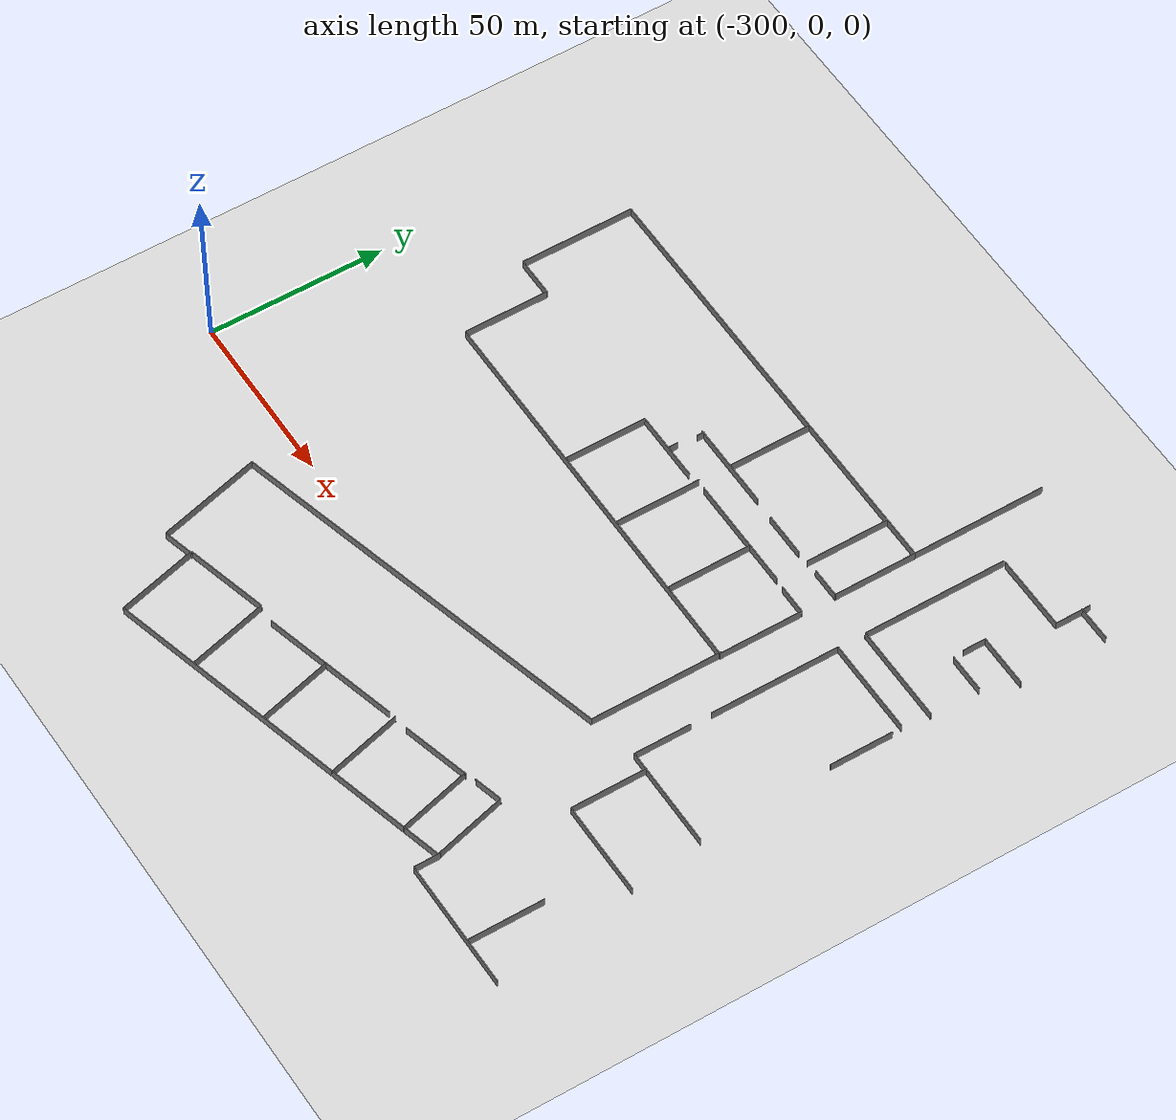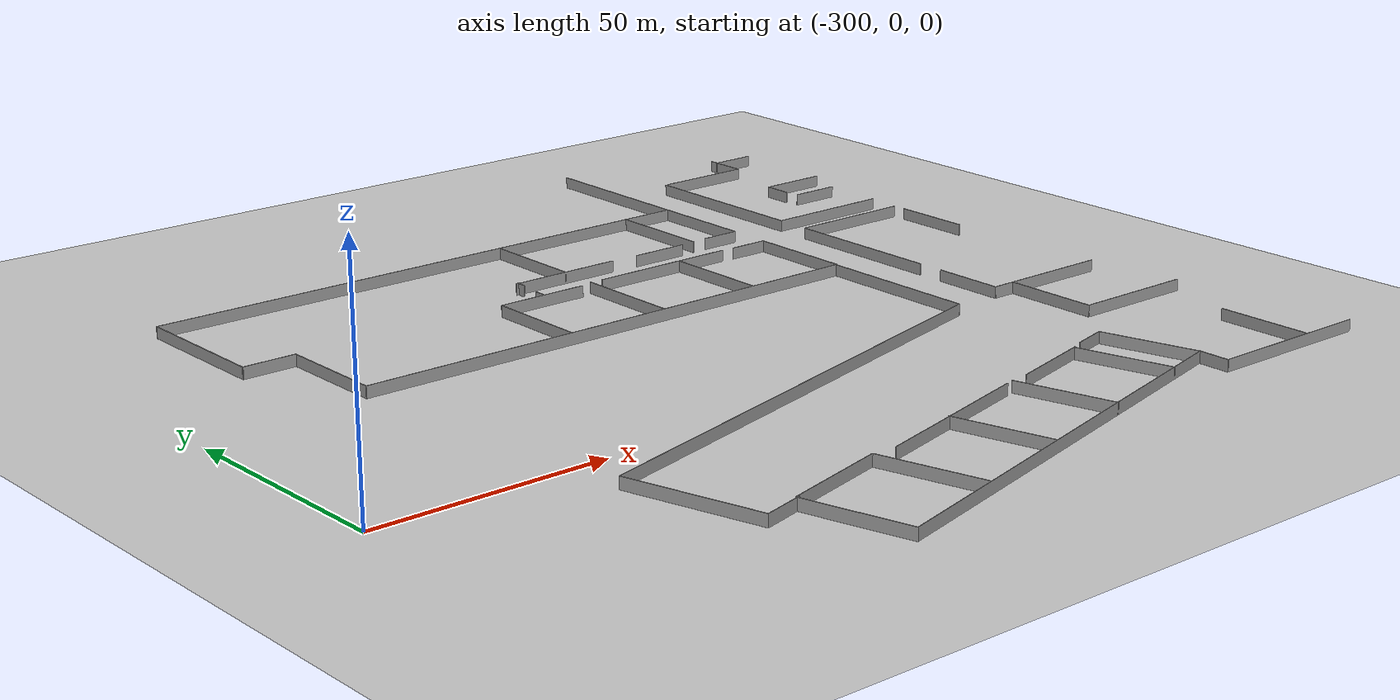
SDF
<sdf version="1.7">
 <world name="default">
  <model name="ground_plane">
   <static>1</static>
   <link name="link">
    <collision name="collision">
     <geometry><plane><normal>0 0 1</normal><size>100 100</size></plane></geometry>
     <surface>
      <contact><collide_bitmask>65535</collide_bitmask></contact>
      <friction><ode><mu>100</mu><mu2>50</mu2></ode></friction>
     </surface>
    </collision>
    <visual name="visual">
     <cast_shadows>0</cast_shadows>
     <geometry><plane><normal>0 0 1</normal><size>100 100</size></plane></geometry>
     <material>
      <script><uri>file://media/materials/scripts/gazebo.material</uri><name>Gazebo/Grey</name></script>
     </material>
    </visual>
   </link>
  </model>
  <model name="DohertyFinal">
   <pose>-129.277 42.9973 0 0 -0 0</pose>
   <link name="Wall_0">
    <collision name="Wall_0_Collision">
     <geometry><box><size>11.75 0.15 2.5</size></box></geometry>
     <pose>0 0 1.25 0 -0 0</pose>
    </collision>
    <visual name="Wall_0_Visual">
     <pose>0 0 1.25 0 -0 0</pose>
     <geometry><box><size>11.75 0.15 2.5</size></box></geometry>
     <material>
      <script><uri>file://media/materials/scripts/gazebo.material</uri><name>Gazebo/Grey</name></script>
      <ambient>1 1 1 1</ambient>
     </material>
     <meta><layer>0</layer></meta>
    </visual>
    <pose>-141.015 34.4358 0 0 -0 3.14159</pose>
   </link>
   <link name="Wall_1">
    <collision name="Wall_1_Collision">
     <geometry><box><size>32.5 0.15 2.5</size></box></geometry>
     <pose>0 0 1.25 0 -0 0</pose>
    </collision>
    <visual name="Wall_1_Visual">
     <pose>0 0 1.25 0 -0 0</pose>
     <geometry><box><size>32.5 0.15 2.5</size></box></geometry>
     <material>
      <script><uri>file://media/materials/scripts/gazebo.material</uri><name>Gazebo/Grey</name></script>
      <ambient>1 1 1 1</ambient>
     </material>
     <meta><layer>0</layer></meta>
    </visual>
    <pose>-146.815 50.6108 0 0 -0 1.5708</pose>
   </link>
   <link name="Wall_10">
    <collision name="Wall_10_Collision">
     <geometry><box><size>25.25 0.15 2.5</size></box></geometry>
     <pose>0 0 1.25 0 -0 0</pose>
    </collision>
    <visual name="Wall_10_Visual">
     <pose>0 0 1.25 0 -0 0</pose>
     <geometry><box><size>25.25 0.15 2.5</size></box></geometry>
     <material>
      <script><uri>file://media/materials/scripts/gazebo.material</uri><name>Gazebo/Grey</name></script>
      <ambient>1 1 1 1</ambient>
     </material>
     <meta><layer>0</layer></meta>
    </visual>
    <pose>-64.5141 43.3806 0 0 -0 3.14159</pose>
   </link>
   <link name="Wall_100">
    <collision name="Wall_100_Collision">
     <geometry><box><size>28.25 0.15 2.5</size></box></geometry>
     <pose>0 0 1.25 0 -0 0</pose>
    </collision>
    <visual name="Wall_100_Visual">
     <pose>0 0 1.25 0 -0 0</pose>
     <geometry><box><size>28.25 0.15 2.5</size></box></geometry>
     <material>
      <script><uri>file://media/materials/scripts/gazebo.material</uri><name>Gazebo/Grey</name></script>
      <ambient>1 1 1 1</ambient>
     </material>
     <meta><layer>0</layer></meta>
    </visual>
    <pose>9.77862 43.2354 0 0 -0 0</pose>
   </link>
   <link name="Wall_106">
    <collision name="Wall_106_Collision">
     <geometry><box><size>21.75 0.15 2.5</size></box></geometry>
     <pose>0 0 1.25 0 -0 0</pose>
    </collision>
    <visual name="Wall_106_Visual">
     <pose>0 0 1.25 0 -0 0</pose>
     <geometry><box><size>21.75 0.15 2.5</size></box></geometry>
     <material>
      <script><uri>file://media/materials/scripts/gazebo.material</uri><name>Gazebo/Grey</name></script>
      <ambient>1 1 1 1</ambient>
     </material>
     <meta><layer>0</layer></meta>
    </visual>
    <pose>7.17052 83.8354 0 0 -0 0</pose>
   </link>
   <link name="Wall_107">
    <collision name="Wall_107_Collision">
     <geometry><box><size>10 0.15 2.5</size></box></geometry>
     <pose>0 0 1.25 0 -0 0</pose>
    </collision>
    <visual name="Wall_107_Visual">
     <pose>0 0 1.25 0 -0 0</pose>
     <geometry><box><size>10 0.15 2.5</size></box></geometry>
     <material>
      <script><uri>file://media/materials/scripts/gazebo.material</uri><name>Gazebo/Grey</name></script>
      <ambient>1 1 1 1</ambient>
     </material>
     <meta><layer>0</layer></meta>
    </visual>
    <pose>17.9705 88.7604 0 0 -0 1.5708</pose>
   </link>
   <link name="Wall_109">
    <collision name="Wall_109_Collision">
     <geometry><box><size>10 0.15 2.5</size></box></geometry>
     <pose>0 0 1.25 0 -0 0</pose>
    </collision>
    <visual name="Wall_109_Visual">
     <pose>0 0 1.25 0 -0 0</pose>
     <geometry><box><size>10 0.15 2.5</size></box></geometry>
     <material>
      <script><uri>file://media/materials/scripts/gazebo.material</uri><name>Gazebo/Grey</name></script>
      <ambient>1 1 1 1</ambient>
     </material>
     <meta><layer>0</layer></meta>
    </visual>
    <pose>22.799 91.5382 0 0 -0 0</pose>
   </link>
   <link name="Wall_111">
    <collision name="Wall_111_Collision">
     <geometry><box><size>15.25 0.15 2.5</size></box></geometry>
     <pose>0 0 1.25 0 -0 0</pose>
    </collision>
    <visual name="Wall_111_Visual">
     <pose>0 0 1.25 0 -0 0</pose>
     <geometry><box><size>15.25 0.15 2.5</size></box></geometry>
     <material>
      <script><uri>file://media/materials/scripts/gazebo.material</uri><name>Gazebo/Grey</name></script>
      <ambient>1 1 1 1</ambient>
     </material>
     <meta><layer>0</layer></meta>
    </visual>
    <pose>20.174 66.6882 0 0 -0 3.14159</pose>
   </link>
   <link name="Wall_112">
    <collision name="Wall_112_Collision">
     <geometry><box><size>6.5 0.15 2.5</size></box></geometry>
     <pose>0 0 1.25 0 -0 0</pose>
    </collision>
    <visual name="Wall_112_Visual">
     <pose>0 0 1.25 0 -0 0</pose>
     <geometry><box><size>6.5 0.15 2.5</size></box></geometry>
     <material>
      <script><uri>file://media/materials/scripts/gazebo.material</uri><name>Gazebo/Grey</name></script>
      <ambient>1 1 1 1</ambient>
     </material>
     <meta><layer>0</layer></meta>
    </visual>
    <pose>12.624 63.5132 0 0 -0 -1.5708</pose>
   </link>
   <link name="Wall_114">
    <collision name="Wall_114_Collision">
     <geometry><box><size>11 0.15 2.5</size></box></geometry>
     <pose>0 0 1.25 0 -0 0</pose>
    </collision>
    <visual name="Wall_114_Visual">
     <pose>0 0 1.25 0 -0 0</pose>
     <geometry><box><size>11 0.15 2.5</size></box></geometry>
     <material>
      <script><uri>file://media/materials/scripts/gazebo.material</uri><name>Gazebo/Grey</name></script>
      <ambient>1 1 1 1</ambient>
     </material>
     <meta><layer>0</layer></meta>
    </visual>
    <pose>18.4848 57.1969 0 0 -0 0</pose>
   </link>
   <link name="Wall_124">
    <collision name="Wall_124_Collision">
     <geometry><box><size>27.5 0.15 2.5</size></box></geometry>
     <pose>0 0 1.25 0 -0 0</pose>
    </collision>
    <visual name="Wall_124_Visual">
     <pose>0 0 1.25 0 -0 0</pose>
     <geometry><box><size>27.5 0.15 2.5</size></box></geometry>
     <material>
      <script><uri>file://media/materials/scripts/gazebo.material</uri><name>Gazebo/Grey</name></script>
      <ambient>1 1 1 1</ambient>
     </material>
     <meta><layer>0</layer></meta>
    </visual>
    <pose>9.33411 35.3725 0 0 -0 3.14159</pose>
   </link>
   <link name="Wall_125">
    <collision name="Wall_125_Collision">
     <geometry><box><size>36.5 0.15 2.5</size></box></geometry>
     <pose>0 0 1.25 0 -0 0</pose>
    </collision>
    <visual name="Wall_125_Visual">
     <pose>0 0 1.25 0 -0 0</pose>
     <geometry><box><size>36.5 0.15 2.5</size></box></geometry>
     <material>
      <script><uri>file://media/materials/scripts/gazebo.material</uri><name>Gazebo/Grey</name></script>
      <ambient>1 1 1 1</ambient>
     </material>
     <meta><layer>0</layer></meta>
    </visual>
    <pose>-4.34089 17.1975 0 0 -0 -1.5708</pose>
   </link>
   <link name="Wall_127">
    <collision name="Wall_127_Collision">
     <geometry><box><size>16 0.15 2.5</size></box></geometry>
     <pose>0 0 1.25 0 -0 0</pose>
    </collision>
    <visual name="Wall_127_Visual">
     <pose>0 0 1.25 0 -0 0</pose>
     <geometry><box><size>16 0.15 2.5</size></box></geometry>
     <material>
      <script><uri>file://media/materials/scripts/gazebo.material</uri><name>Gazebo/Grey</name></script>
      <ambient>1 1 1 1</ambient>
     </material>
     <meta><layer>0</layer></meta>
    </visual>
    <pose>-4.27137 -14.9175 0 0 -0 -1.5708</pose>
   </link>
   <link name="Wall_128">
    <collision name="Wall_128_Collision">
     <geometry><box><size>29.25 0.15 2.5</size></box></geometry>
     <pose>0 0 1.25 0 -0 0</pose>
    </collision>
    <visual name="Wall_128_Visual">
     <pose>0 0 1.25 0 -0 0</pose>
     <geometry><box><size>29.25 0.15 2.5</size></box></geometry>
     <material>
      <script><uri>file://media/materials/scripts/gazebo.material</uri><name>Gazebo/Grey</name></script>
      <ambient>1 1 1 1</ambient>
     </material>
     <meta><layer>0</layer></meta>
    </visual>
    <pose>10.2786 -22.8425 0 0 -0 0</pose>
   </link>
   <link name="Wall_13">
    <collision name="Wall_13_Collision">
     <geometry><box><size>23.25 0.15 2.5</size></box></geometry>
     <pose>0 0 1.25 0 -0 0</pose>
    </collision>
    <visual name="Wall_13_Visual">
     <pose>0 0 1.25 0 -0 0</pose>
     <geometry><box><size>23.25 0.15 2.5</size></box></geometry>
     <material>
      <script><uri>file://media/materials/scripts/gazebo.material</uri><name>Gazebo/Grey</name></script>
      <ambient>1 1 1 1</ambient>
     </material>
     <meta><layer>0</layer></meta>
    </visual>
    <pose>-64.4104 54.9306 0 0 -0 1.5708</pose>
   </link>
   <link name="Wall_130">
    <collision name="Wall_130_Collision">
     <geometry><box><size>17.75 0.15 2.5</size></box></geometry>
     <pose>0 0 1.25 0 -0 0</pose>
    </collision>
    <visual name="Wall_130_Visual">
     <pose>0 0 1.25 0 -0 0</pose>
     <geometry><box><size>17.75 0.15 2.5</size></box></geometry>
     <material>
      <script><uri>file://media/materials/scripts/gazebo.material</uri><name>Gazebo/Grey</name></script>
      <ambient>1 1 1 1</ambient>
     </material>
     <meta><layer>0</layer></meta>
    </visual>
    <pose>23.3301 23.6839 0 0 -0 -1.5708</pose>
   </link>
   <link name="Wall_146">
    <collision name="Wall_146_Collision">
     <geometry><box><size>21.25 0.15 2.5</size></box></geometry>
     <pose>0 0 1.25 0 -0 0</pose>
    </collision>
    <visual name="Wall_146_Visual">
     <pose>0 0 1.25 0 -0 0</pose>
     <geometry><box><size>21.25 0.15 2.5</size></box></geometry>
     <material>
      <script><uri>file://media/materials/scripts/gazebo.material</uri><name>Gazebo/Grey</name></script>
      <ambient>1 1 1 1</ambient>
     </material>
     <meta><layer>0</layer></meta>
    </visual>
    <pose>0.863775 -33.2778 0 0 -0 -1.5708</pose>
   </link>
   <link name="Wall_147">
    <collision name="Wall_147_Collision">
     <geometry><box><size>27.25 0.15 2.5</size></box></geometry>
     <pose>0 0 1.25 0 -0 0</pose>
    </collision>
    <visual name="Wall_147_Visual">
     <pose>0 0 1.25 0 -0 0</pose>
     <geometry><box><size>27.25 0.15 2.5</size></box></geometry>
     <material>
      <script><uri>file://media/materials/scripts/gazebo.material</uri><name>Gazebo/Grey</name></script>
      <ambient>1 1 1 1</ambient>
     </material>
     <meta><layer>0</layer></meta>
    </visual>
    <pose>14.4138 -43.8278 0 0 -0 0</pose>
   </link>
   <link name="Wall_17">
    <collision name="Wall_17_Collision">
     <geometry><box><size>24 0.15 2.5</size></box></geometry>
     <pose>0 0 1.25 0 -0 0</pose>
    </collision>
    <visual name="Wall_17_Visual">
     <pose>0 0 1.25 0 -0 0</pose>
     <geometry><box><size>24 0.15 2.5</size></box></geometry>
     <material>
      <script><uri>file://media/materials/scripts/gazebo.material</uri><name>Gazebo/Grey</name></script>
      <ambient>1 1 1 1</ambient>
     </material>
     <meta><layer>0</layer></meta>
    </visual>
    <pose>-135.258 22.2007 0 0 -0 -1.5708</pose>
   </link>
   <link name="Wall_174">
    <collision name="Wall_174_Collision">
     <geometry><box><size>21 0.15 2.5</size></box></geometry>
     <pose>0 0 1.25 0 -0 0</pose>
    </collision>
    <visual name="Wall_174_Visual">
     <pose>0 0 1.25 0 -0 0</pose>
     <geometry><box><size>21 0.15 2.5</size></box></geometry>
     <material>
      <script><uri>file://media/materials/scripts/gazebo.material</uri><name>Gazebo/Grey</name></script>
      <ambient>1 1 1 1</ambient>
     </material>
     <meta><layer>0</layer></meta>
    </visual>
    <pose>19.3349 -73.171 0 0 -0 1.5708</pose>
   </link>
   <link name="Wall_18">
    <collision name="Wall_18_Collision">
     <geometry><box><size>117.5 0.15 2.5</size></box></geometry>
     <pose>0 0 1.25 0 -0 0</pose>
    </collision>
    <visual name="Wall_18_Visual">
     <pose>0 0 1.25 0 -0 0</pose>
     <geometry><box><size>117.5 0.15 2.5</size></box></geometry>
     <material>
      <script><uri>file://media/materials/scripts/gazebo.material</uri><name>Gazebo/Grey</name></script>
      <ambient>1 1 1 1</ambient>
     </material>
     <meta><layer>0</layer></meta>
    </visual>
    <pose>-76.5833 10.2757 0 0 -0 0</pose>
   </link>
   <link name="Wall_19">
    <collision name="Wall_19_Collision">
     <geometry><box><size>23.75 0.15 2.5</size></box></geometry>
     <pose>0 0 1.25 0 -0 0</pose>
    </collision>
    <visual name="Wall_19_Visual">
     <pose>0 0 1.25 0 -0 0</pose>
     <geometry><box><size>23.75 0.15 2.5</size></box></geometry>
     <material>
      <script><uri>file://media/materials/scripts/gazebo.material</uri><name>Gazebo/Grey</name></script>
      <ambient>1 1 1 1</ambient>
     </material>
     <meta><layer>0</layer></meta>
    </visual>
    <pose>-17.9083 22.0757 0 0 -0 1.5708</pose>
   </link>
   <link name="Wall_2">
    <collision name="Wall_2_Collision">
     <geometry><box><size>129.25 0.15 2.5</size></box></geometry>
     <pose>0 0 1.25 0 -0 0</pose>
    </collision>
    <visual name="Wall_2_Visual">
     <pose>0 0 1.25 0 -0 0</pose>
     <geometry><box><size>129.25 0.15 2.5</size></box></geometry>
     <material>
      <script><uri>file://media/materials/scripts/gazebo.material</uri><name>Gazebo/Grey</name></script>
      <ambient>1 1 1 1</ambient>
     </material>
     <meta><layer>0</layer></meta>
    </visual>
    <pose>-82.2655 66.7858 0 0 -0 0</pose>
   </link>
   <link name="Wall_20">
    <collision name="Wall_20_Collision">
     <geometry><box><size>8.75 0.15 2.5</size></box></geometry>
     <pose>0 0 1.25 0 -0 0</pose>
    </collision>
    <visual name="Wall_20_Visual">
     <pose>0 0 1.25 0 -0 0</pose>
     <geometry><box><size>8.75 0.15 2.5</size></box></geometry>
     <material>
      <script><uri>file://media/materials/scripts/gazebo.material</uri><name>Gazebo/Grey</name></script>
      <ambient>1 1 1 1</ambient>
     </material>
     <meta><layer>0</layer></meta>
    </visual>
    <pose>-22.2083 33.8757 0 0 -0 3.14159</pose>
   </link>
   <link name="Wall_22">
    <collision name="Wall_22_Collision">
     <geometry><box><size>32.75 0.15 2.5</size></box></geometry>
     <pose>0 0 1.25 0 -0 0</pose>
    </collision>
    <visual name="Wall_22_Visual">
     <pose>0 0 1.25 0 -0 0</pose>
     <geometry><box><size>32.75 0.15 2.5</size></box></geometry>
     <material>
      <script><uri>file://media/materials/scripts/gazebo.material</uri><name>Gazebo/Grey</name></script>
      <ambient>1 1 1 1</ambient>
     </material>
     <meta><layer>0</layer></meta>
    </visual>
    <pose>-45.6056 34.1257 0 0 -0 3.14159</pose>
   </link>
   <link name="Wall_24">
    <collision name="Wall_24_Collision">
     <geometry><box><size>20.5 0.15 2.5</size></box></geometry>
     <pose>0 0 1.25 0 -0 0</pose>
    </collision>
    <visual name="Wall_24_Visual">
     <pose>0 0 1.25 0 -0 0</pose>
     <geometry><box><size>20.5 0.15 2.5</size></box></geometry>
     <material>
      <script><uri>file://media/materials/scripts/gazebo.material</uri><name>Gazebo/Grey</name></script>
      <ambient>1 1 1 1</ambient>
     </material>
     <meta><layer>0</layer></meta>
    </visual>
    <pose>-77.7767 33.4874 0 0 -0 3.14159</pose>
   </link>
   <link name="Wall_25">
    <collision name="Wall_25_Collision">
     <geometry><box><size>23.25 0.15 2.5</size></box></geometry>
     <pose>0 0 1.25 0 -0 0</pose>
    </collision>
    <visual name="Wall_25_Visual">
     <pose>0 0 1.25 0 -0 0</pose>
     <geometry><box><size>23.25 0.15 2.5</size></box></geometry>
     <material>
      <script><uri>file://media/materials/scripts/gazebo.material</uri><name>Gazebo/Grey</name></script>
      <ambient>1 1 1 1</ambient>
     </material>
     <meta><layer>0</layer></meta>
    </visual>
    <pose>-87.9517 21.9374 0 0 -0 -1.5708</pose>
   </link>
   <link name="Wall_26">
    <collision name="Wall_26_Collision">
     <geometry><box><size>0.5 0.15 2.5</size></box></geometry>
     <pose>0 0 1.25 0 -0 0</pose>
    </collision>
    <visual name="Wall_26_Visual">
     <pose>0 0 1.25 0 -0 0</pose>
     <geometry><box><size>0.5 0.15 2.5</size></box></geometry>
     <material>
      <script><uri>file://media/materials/scripts/gazebo.material</uri><name>Gazebo/Grey</name></script>
      <ambient>1 1 1 1</ambient>
     </material>
     <meta><layer>0</layer></meta>
    </visual>
    <pose>-87.997 10.5565 0 0 -0 1.8326</pose>
   </link>
   <link name="Wall_28">
    <collision name="Wall_28_Collision">
     <geometry><box><size>24.25 0.15 2.5</size></box></geometry>
     <pose>0 0 1.25 0 -0 0</pose>
    </collision>
    <visual name="Wall_28_Visual">
     <pose>0 0 1.25 0 -0 0</pose>
     <geometry><box><size>24.25 0.15 2.5</size></box></geometry>
     <material>
      <script><uri>file://media/materials/scripts/gazebo.material</uri><name>Gazebo/Grey</name></script>
      <ambient>1 1 1 1</ambient>
     </material>
     <meta><layer>0</layer></meta>
    </visual>
    <pose>-64.7751 22.4143 0 0 -0 -1.5708</pose>
   </link>
   <link name="Wall_3">
    <collision name="Wall_3_Collision">
     <geometry><box><size>23.5 0.15 2.5</size></box></geometry>
     <pose>0 0 1.25 0 -0 0</pose>
    </collision>
    <visual name="Wall_3_Visual">
     <pose>0 0 1.25 0 -0 0</pose>
     <geometry><box><size>23.5 0.15 2.5</size></box></geometry>
     <material>
      <script><uri>file://media/materials/scripts/gazebo.material</uri><name>Gazebo/Grey</name></script>
      <ambient>1 1 1 1</ambient>
     </material>
     <meta><layer>0</layer></meta>
    </visual>
    <pose>-17.7155 55.1108 0 0 -0 -1.5708</pose>
   </link>
   <link name="Wall_30">
    <collision name="Wall_30_Collision">
     <geometry><box><size>23.75 0.15 2.5</size></box></geometry>
     <pose>0 0 1.25 0 -0 0</pose>
    </collision>
    <visual name="Wall_30_Visual">
     <pose>0 0 1.25 0 -0 0</pose>
     <geometry><box><size>23.75 0.15 2.5</size></box></geometry>
     <material>
      <script><uri>file://media/materials/scripts/gazebo.material</uri><name>Gazebo/Grey</name></script>
      <ambient>1 1 1 1</ambient>
     </material>
     <meta><layer>0</layer></meta>
    </visual>
    <pose>-41.2868 22.2973 0 0 -0 -1.5708</pose>
   </link>
   <link name="Wall_32">
    <collision name="Wall_32_Collision">
     <geometry><box><size>2.25 0.15 2.5</size></box></geometry>
     <pose>0 0 1.25 0 -0 0</pose>
    </collision>
    <visual name="Wall_32_Visual">
     <pose>0 0 1.25 0 -0 0</pose>
     <geometry><box><size>2.25 0.15 2.5</size></box></geometry>
     <material>
      <script><uri>file://media/materials/scripts/gazebo.material</uri><name>Gazebo/Grey</name></script>
      <ambient>1 1 1 1</ambient>
     </material>
     <meta><layer>0</layer></meta>
    </visual>
    <pose>-76.5193 42.5894 0 0 -0 -1.5708</pose>
   </link>
   <link name="Wall_34">
    <collision name="Wall_34_Collision">
     <geometry><box><size>2.5 0.15 2.5</size></box></geometry>
     <pose>0 0 1.25 0 -0 0</pose>
    </collision>
    <visual name="Wall_34_Visual">
     <pose>0 0 1.25 0 -0 0</pose>
     <geometry><box><size>2.5 0.15 2.5</size></box></geometry>
     <material>
      <script><uri>file://media/materials/scripts/gazebo.material</uri><name>Gazebo/Grey</name></script>
      <ambient>1 1 1 1</ambient>
     </material>
     <meta><layer>0</layer></meta>
    </visual>
    <pose>-77.2533 35.1244 0 0 -0 -1.5708</pose>
   </link>
   <link name="Wall_37">
    <collision name="Wall_37_Collision">
     <geometry><box><size>37.25 0.15 2.5</size></box></geometry>
     <pose>0 0 1.25 0 -0 0</pose>
    </collision>
    <visual name="Wall_37_Visual">
     <pose>0 0 1.25 0 -0 0</pose>
     <geometry><box><size>37.25 0.15 2.5</size></box></geometry>
     <material>
      <script><uri>file://media/materials/scripts/gazebo.material</uri><name>Gazebo/Grey</name></script>
      <ambient>1 1 1 1</ambient>
     </material>
     <meta><layer>0</layer></meta>
    </visual>
    <pose>-18.1655 -7.57398 0 0 -0 -1.5708</pose>
   </link>
   <link name="Wall_38">
    <collision name="Wall_38_Collision">
     <geometry><box><size>114.25 0.15 2.5</size></box></geometry>
     <pose>0 0 1.25 0 -0 0</pose>
    </collision>
    <visual name="Wall_38_Visual">
     <pose>0 0 1.25 0 -0 0</pose>
     <geometry><box><size>114.25 0.15 2.5</size></box></geometry>
     <material>
      <script><uri>file://media/materials/scripts/gazebo.material</uri><name>Gazebo/Grey</name></script>
      <ambient>1 1 1 1</ambient>
     </material>
     <meta><layer>0</layer></meta>
    </visual>
    <pose>-73.2716 -40.8896 0 0 -0 -2.87979</pose>
   </link>
   <link name="Wall_39">
    <collision name="Wall_39_Collision">
     <geometry><box><size>30 0.15 2.5</size></box></geometry>
     <pose>0 0 1.25 0 -0 0</pose>
    </collision>
    <visual name="Wall_39_Visual">
     <pose>0 0 1.25 0 -0 0</pose>
     <geometry><box><size>30 0.15 2.5</size></box></geometry>
     <material>
      <script><uri>file://media/materials/scripts/gazebo.material</uri><name>Gazebo/Grey</name></script>
      <ambient>1 1 1 1</ambient>
     </material>
     <meta><layer>0</layer></meta>
    </visual>
    <pose>-124.515 -70.0717 0 0 -0 -1.309</pose>
   </link>
   <link name="Wall_4">
    <collision name="Wall_4_Collision">
     <geometry><box><size>8.75 0.15 2.5</size></box></geometry>
     <pose>0 0 1.25 0 -0 0</pose>
    </collision>
    <visual name="Wall_4_Visual">
     <pose>0 0 1.25 0 -0 0</pose>
     <geometry><box><size>8.75 0.15 2.5</size></box></geometry>
     <material>
      <script><uri>file://media/materials/scripts/gazebo.material</uri><name>Gazebo/Grey</name></script>
      <ambient>1 1 1 1</ambient>
     </material>
     <meta><layer>0</layer></meta>
    </visual>
    <pose>-22.0155 43.4358 0 0 -0 3.14159</pose>
   </link>
   <link name="Wall_40">
    <collision name="Wall_40_Collision">
     <geometry><box><size>9.25 0.15 2.5</size></box></geometry>
     <pose>0 0 1.25 0 -0 0</pose>
    </collision>
    <visual name="Wall_40_Visual">
     <pose>0 0 1.25 0 -0 0</pose>
     <geometry><box><size>9.25 0.15 2.5</size></box></geometry>
     <material>
      <script><uri>file://media/materials/scripts/gazebo.material</uri><name>Gazebo/Grey</name></script>
      <ambient>1 1 1 1</ambient>
     </material>
     <meta><layer>0</layer></meta>
    </visual>
    <pose>-116.257 -83.3105 0 0 -0 0.261799</pose>
   </link>
   <link name="Wall_42">
    <collision name="Wall_42_Collision">
     <geometry><box><size>23 0.15 2.5</size></box></geometry>
     <pose>0 0 1.25 0 -0 0</pose>
    </collision>
    <visual name="Wall_42_Visual">
     <pose>0 0 1.25 0 -0 0</pose>
     <geometry><box><size>23 0.15 2.5</size></box></geometry>
     <material>
      <script><uri>file://media/materials/scripts/gazebo.material</uri><name>Gazebo/Grey</name></script>
      <ambient>1 1 1 1</ambient>
     </material>
     <meta><layer>0</layer></meta>
    </visual>
    <pose>-109.46 -93.3332 0 0 -0 -1.309</pose>
   </link>
   <link name="Wall_43">
    <collision name="Wall_43_Collision">
     <geometry><box><size>105.5 0.15 2.5</size></box></geometry>
     <pose>0 0 1.25 0 -0 0</pose>
    </collision>
    <visual name="Wall_43_Visual">
     <pose>0 0 1.25 0 -0 0</pose>
     <geometry><box><size>105.5 0.15 2.5</size></box></geometry>
     <material>
      <script><uri>file://media/materials/scripts/gazebo.material</uri><name>Gazebo/Grey</name></script>
      <ambient>1 1 1 1</ambient>
     </material>
     <meta><layer>0</layer></meta>
    </visual>
    <pose>-55.6227 -90.7356 0 0 -0 0.261799</pose>
   </link>
   <link name="Wall_44">
    <collision name="Wall_44_Collision">
     <geometry><box><size>21.5 0.15 2.5</size></box></geometry>
     <pose>0 0 1.25 0 -0 0</pose>
    </collision>
    <visual name="Wall_44_Visual">
     <pose>0 0 1.25 0 -0 0</pose>
     <geometry><box><size>21.5 0.15 2.5</size></box></geometry>
     <material>
      <script><uri>file://media/materials/scripts/gazebo.material</uri><name>Gazebo/Grey</name></script>
      <ambient>1 1 1 1</ambient>
     </material>
     <meta><layer>0</layer></meta>
    </visual>
    <pose>-7.50544 -66.791 0 0 -0 1.8326</pose>
   </link>
   <link name="Wall_45">
    <collision name="Wall_45_Collision">
     <geometry><box><size>8.25 0.15 2.5</size></box></geometry>
     <pose>0 0 1.25 0 -0 0</pose>
    </collision>
    <visual name="Wall_45_Visual">
     <pose>0 0 1.25 0 -0 0</pose>
     <geometry><box><size>8.25 0.15 2.5</size></box></geometry>
     <material>
      <script><uri>file://media/materials/scripts/gazebo.material</uri><name>Gazebo/Grey</name></script>
      <ambient>1 1 1 1</ambient>
     </material>
     <meta><layer>0</layer></meta>
    </visual>
    <pose>-14.1803 -57.528 0 0 -0 -2.87979</pose>
   </link>
   <link name="Wall_47">
    <collision name="Wall_47_Collision">
     <geometry><box><size>21 0.15 2.5</size></box></geometry>
     <pose>0 0 1.25 0 -0 0</pose>
    </collision>
    <visual name="Wall_47_Visual">
     <pose>0 0 1.25 0 -0 0</pose>
     <geometry><box><size>21 0.15 2.5</size></box></geometry>
     <material>
      <script><uri>file://media/materials/scripts/gazebo.material</uri><name>Gazebo/Grey</name></script>
      <ambient>1 1 1 1</ambient>
     </material>
     <meta><layer>0</layer></meta>
    </visual>
    <pose>-18.3345 -69.98 0 0 -0 -1.309</pose>
   </link>
   <link name="Wall_51">
    <collision name="Wall_51_Collision">
     <geometry><box><size>19.75 0.15 2.5</size></box></geometry>
     <pose>0 0 1.25 0 -0 0</pose>
    </collision>
    <visual name="Wall_51_Visual">
     <pose>0 0 1.25 0 -0 0</pose>
     <geometry><box><size>19.75 0.15 2.5</size></box></geometry>
     <material>
      <script><uri>file://media/materials/scripts/gazebo.material</uri><name>Gazebo/Grey</name></script>
      <ambient>1 1 1 1</ambient>
     </material>
     <meta><layer>0</layer></meta>
    </visual>
    <pose>-30.2384 -62.274 0 0 -0 -2.87979</pose>
   </link>
   <link name="Wall_53">
    <collision name="Wall_53_Collision">
     <geometry><box><size>39.75 0.15 2.5</size></box></geometry>
     <pose>0 0 1.25 0 -0 0</pose>
    </collision>
    <visual name="Wall_53_Visual">
     <pose>0 0 1.25 0 -0 0</pose>
     <geometry><box><size>39.75 0.15 2.5</size></box></geometry>
     <material>
      <script><uri>file://media/materials/scripts/gazebo.material</uri><name>Gazebo/Grey</name></script>
      <ambient>1 1 1 1</ambient>
     </material>
     <meta><layer>0</layer></meta>
    </visual>
    <pose>-64.8734 -70.9674 0 0 -0 -2.87979</pose>
   </link>
   <link name="Wall_57">
    <collision name="Wall_57_Collision">
     <geometry><box><size>24 0.15 2.5</size></box></geometry>
     <pose>0 0 1.25 0 -0 0</pose>
    </collision>
    <visual name="Wall_57_Visual">
     <pose>0 0 1.25 0 -0 0</pose>
     <geometry><box><size>24 0.15 2.5</size></box></geometry>
     <material>
      <script><uri>file://media/materials/scripts/gazebo.material</uri><name>Gazebo/Grey</name></script>
      <ambient>1 1 1 1</ambient>
     </material>
     <meta><layer>0</layer></meta>
    </visual>
    <pose>-100.831 -78.8518 0 0 -0 0.261799</pose>
   </link>
   <link name="Wall_59">
    <collision name="Wall_59_Collision">
     <geometry><box><size>23.25 0.15 2.5</size></box></geometry>
     <pose>0 0 1.25 0 -0 0</pose>
    </collision>
    <visual name="Wall_59_Visual">
     <pose>0 0 1.25 0 -0 0</pose>
     <geometry><box><size>23.25 0.15 2.5</size></box></geometry>
     <material>
      <script><uri>file://media/materials/scripts/gazebo.material</uri><name>Gazebo/Grey</name></script>
      <ambient>1 1 1 1</ambient>
     </material>
     <meta><layer>0</layer></meta>
    </visual>
    <pose>-86.3234 -86.9218 0 0 -0 -1.309</pose>
   </link>
   <link name="Wall_6">
    <collision name="Wall_6_Collision">
     <geometry><box><size>23.5 0.15 2.5</size></box></geometry>
     <pose>0 0 1.25 0 -0 0</pose>
    </collision>
    <visual name="Wall_6_Visual">
     <pose>0 0 1.25 0 -0 0</pose>
     <geometry><box><size>23.5 0.15 2.5</size></box></geometry>
     <material>
      <script><uri>file://media/materials/scripts/gazebo.material</uri><name>Gazebo/Grey</name></script>
      <ambient>1 1 1 1</ambient>
     </material>
     <meta><layer>0</layer></meta>
    </visual>
    <pose>-29.7623 54.991 0 0 -0 1.5708</pose>
   </link>
   <link name="Wall_63">
    <collision name="Wall_63_Collision">
     <geometry><box><size>21.75 0.15 2.5</size></box></geometry>
     <pose>0 0 1.25 0 -0 0</pose>
    </collision>
    <visual name="Wall_63_Visual">
     <pose>0 0 1.25 0 -0 0</pose>
     <geometry><box><size>21.75 0.15 2.5</size></box></geometry>
     <material>
      <script><uri>file://media/materials/scripts/gazebo.material</uri><name>Gazebo/Grey</name></script>
      <ambient>1 1 1 1</ambient>
     </material>
     <meta><layer>0</layer></meta>
    </visual>
    <pose>-63.4745 -81.5937 0 0 -0 -1.309</pose>
   </link>
   <link name="Wall_65">
    <collision name="Wall_65_Collision">
     <geometry><box><size>21.75 0.15 2.5</size></box></geometry>
     <pose>0 0 1.25 0 -0 0</pose>
    </collision>
    <visual name="Wall_65_Visual">
     <pose>0 0 1.25 0 -0 0</pose>
     <geometry><box><size>21.75 0.15 2.5</size></box></geometry>
     <material>
      <script><uri>file://media/materials/scripts/gazebo.material</uri><name>Gazebo/Grey</name></script>
      <ambient>1 1 1 1</ambient>
     </material>
     <meta><layer>0</layer></meta>
    </visual>
    <pose>-41.1025 -75.723 0 0 -0 -1.309</pose>
   </link>
   <link name="Wall_68">
    <collision name="Wall_68_Collision">
     <geometry><box><size>37.75 0.15 2.5</size></box></geometry>
     <pose>0 0 1.25 0 -0 0</pose>
    </collision>
    <visual name="Wall_68_Visual">
     <pose>0 0 1.25 0 -0 0</pose>
     <geometry><box><size>37.75 0.15 2.5</size></box></geometry>
     <material>
      <script><uri>file://media/materials/scripts/gazebo.material</uri><name>Gazebo/Grey</name></script>
      <ambient>1 1 1 1</ambient>
     </material>
     <meta><layer>0</layer></meta>
    </visual>
    <pose>-17.7155 85.5858 0 0 -0 1.5708</pose>
   </link>
   <link name="Wall_79">
    <collision name="Wall_79_Collision">
     <geometry><box><size>37.5275 0.15 2.5</size></box></geometry>
     <pose>0 0 1.25 0 -0 0</pose>
    </collision>
    <visual name="Wall_79_Visual">
     <pose>0 0 1.25 0 -0 0</pose>
     <geometry><box><size>37.5275 0.15 2.5</size></box></geometry>
     <material>
      <script><uri>file://media/materials/scripts/gazebo.material</uri><name>Gazebo/Grey</name></script>
      <ambient>1 1 1 1</ambient>
     </material>
     <meta><layer>0</layer></meta>
    </visual>
    <pose>13.9958 -83.8642 0 0 -0 3.14159</pose>
   </link>
   <link name="Wall_8">
    <collision name="Wall_8_Collision">
     <geometry><box><size>12.75 0.15 2.5</size></box></geometry>
     <pose>0 0 1.25 0 -0 0</pose>
    </collision>
    <visual name="Wall_8_Visual">
     <pose>0 0 1.25 0 -0 0</pose>
     <geometry><box><size>12.75 0.15 2.5</size></box></geometry>
     <material>
      <script><uri>file://media/materials/scripts/gazebo.material</uri><name>Gazebo/Grey</name></script>
      <ambient>1 1 1 1</ambient>
     </material>
     <meta><layer>0</layer></meta>
    </visual>
    <pose>-39.4352 43.0615 0 0 -0 3.14159</pose>
   </link>
   <link name="Wall_83">
    <collision name="Wall_83_Collision">
     <geometry><box><size>7.25 0.15 2.5</size></box></geometry>
     <pose>0 0 1.25 0 -0 0</pose>
    </collision>
    <visual name="Wall_83_Visual">
     <pose>0 0 1.25 0 -0 0</pose>
     <geometry><box><size>7.25 0.15 2.5</size></box></geometry>
     <material>
      <script><uri>file://media/materials/scripts/gazebo.material</uri><name>Gazebo/Grey</name></script>
      <ambient>1 1 1 1</ambient>
     </material>
     <meta><layer>0</layer></meta>
    </visual>
    <pose>-4.69299 -80.3143 0 0 -0 1.5708</pose>
   </link>
   <link name="Wall_99">
    <collision name="Wall_99_Collision">
     <geometry><box><size>40.75 0.15 2.5</size></box></geometry>
     <pose>0 0 1.25 0 -0 0</pose>
    </collision>
    <visual name="Wall_99_Visual">
     <pose>0 0 1.25 0 -0 0</pose>
     <geometry><box><size>40.75 0.15 2.5</size></box></geometry>
     <material>
      <script><uri>file://media/materials/scripts/gazebo.material</uri><name>Gazebo/Grey</name></script>
      <ambient>1 1 1 1</ambient>
     </material>
     <meta><layer>0</layer></meta>
    </visual>
    <pose>-4.27137 63.5354 0 0 -0 -1.5708</pose>
   </link>
   <static>1</static>
  </model>
 </world>
</sdf>
